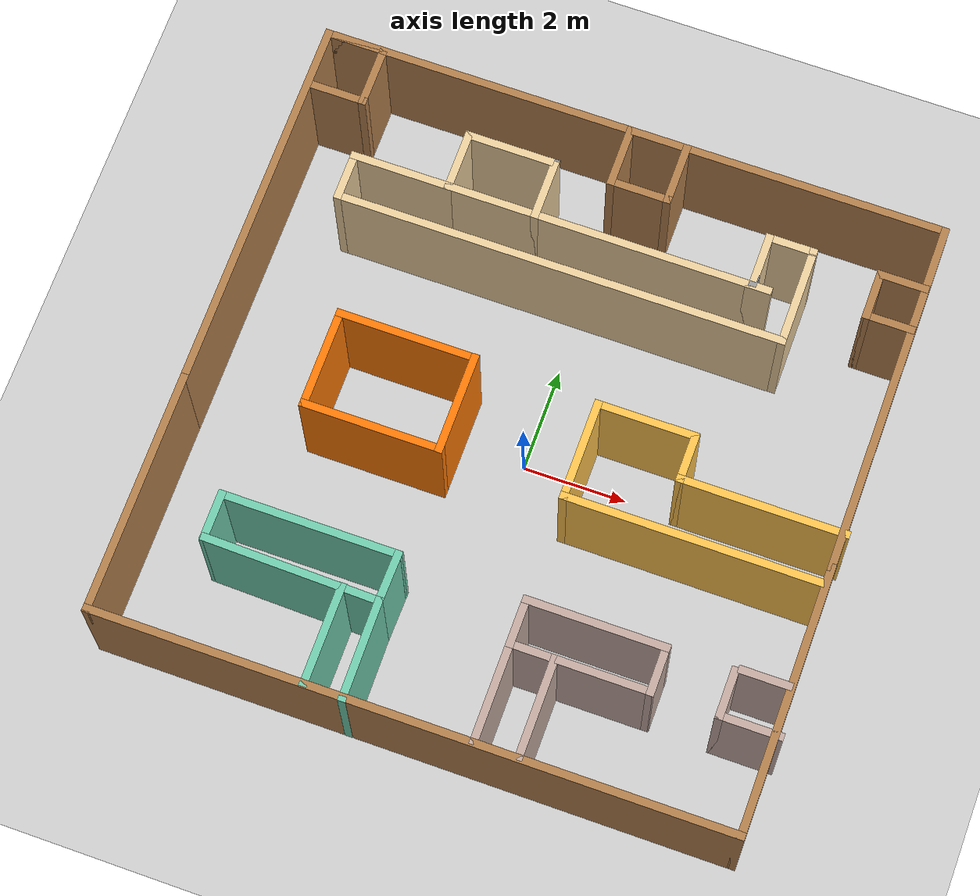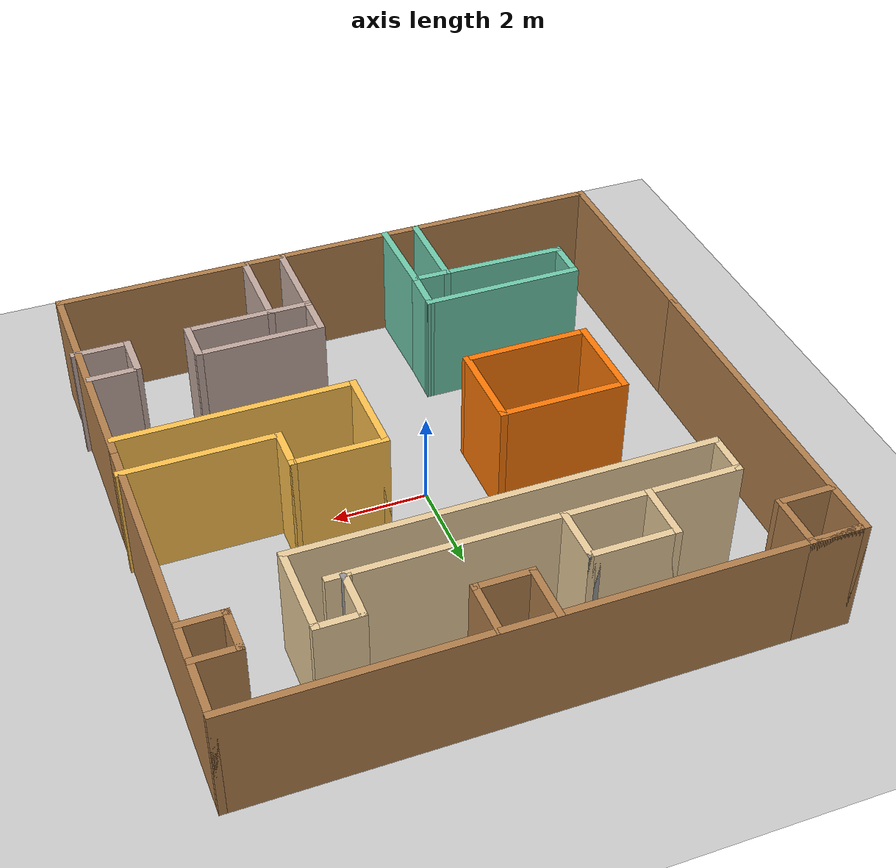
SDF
<sdf version="1.7">
 <world name="default">
  <light name="sun" type="directional">
   <pose>0 0 10 0 -0 0</pose>
   <diffuse>0.8 0.8 0.8 1</diffuse>
   <specular>0.2 0.2 0.2 1</specular>
   <attenuation>
    <range>1000</range>
    <constant>0.9</constant>
    <linear>0.01</linear>
    <quadratic>0.001</quadratic>
   </attenuation>
   <direction>-0.5 0.1 -0.9</direction>
   <spot><inner_angle>0</inner_angle><outer_angle>0</outer_angle><falloff>0</falloff></spot>
  </light>
  <model name="ground_plane">
   <static>1</static>
   <link name="link">
    <collision name="collision">
     <geometry><plane><normal>0 0 1</normal><size>100 100</size></plane></geometry>
     <surface><friction><ode><mu>100</mu><mu2>50</mu2></ode></friction></surface>
    </collision>
    <visual name="visual">
     <cast_shadows>0</cast_shadows>
     <geometry><plane><normal>0 0 1</normal><size>100 100</size></plane></geometry>
     <material>
      <script><uri>file://media/materials/scripts/gazebo.material</uri><name>Gazebo/Grey</name></script>
     </material>
    </visual>
   </link>
  </model>
  <gravity>0 0 -9.8</gravity>
  <magnetic_field>6e-06 2.3e-05 -4.2e-05</magnetic_field>
  <atmosphere type="adiabatic"/>
  <physics type="ode">
   <max_step_size>0.001</max_step_size>
   <real_time_factor>1</real_time_factor>
   <real_time_update_rate>1000</real_time_update_rate>
  </physics>
  <scene><ambient>0.4 0.4 0.4 1</ambient><background>0.7 0.7 0.7 1</background><shadows>1</shadows></scene>
  <audio><device>default</device></audio>
  <spherical_coordinates>
   <surface_model>EARTH_WGS84</surface_model>
   <latitude_deg>0</latitude_deg>
   <longitude_deg>0</longitude_deg>
   <elevation>0</elevation>
   <heading_deg>0</heading_deg>
  </spherical_coordinates>
  <model name="Untitled">
   <pose>0.021221 0.133235 0 0 -0 0</pose>
   <link name="Wall_10">
    <collision name="Wall_10_Collision">
     <geometry><box><size>5.25 0.15 2.5</size></box></geometry>
     <pose>0 0 1.25 0 -0 0</pose>
    </collision>
    <visual name="Wall_10_Visual">
     <pose>0 0 1.25 0 -0 0</pose>
     <geometry><box><size>5.25 0.15 2.5</size></box></geometry>
     <material>
      <script><uri>file://media/materials/scripts/gazebo.material</uri><name>Gazebo/Wood</name></script>
      <ambient>1 1 1 1</ambient>
     </material>
     <meta><layer>0</layer></meta>
    </visual>
    <pose>6.00878 -3.42323 0 0 -0 1.5708</pose>
   </link>
   <link name="Wall_106">
    <collision name="Wall_106_Collision">
     <geometry><box><size>1.06668 0.15 2.5</size></box></geometry>
     <pose>0 0 1.25 0 -0 0</pose>
    </collision>
    <visual name="Wall_106_Visual">
     <pose>0 0 1.25 0 -0 0</pose>
     <geometry><box><size>1.06668 0.15 2.5</size></box></geometry>
     <material>
      <script><uri>file://media/materials/scripts/gazebo.material</uri><name>Gazebo/Grey</name></script>
      <ambient>0.435294 0.796078 0.67451 1</ambient>
     </material>
     <meta><layer>0</layer></meta>
    </visual>
    <pose>-1.29421 -3.66768 0 0 -0 1.54898</pose>
   </link>
   <link name="Wall_112">
    <collision name="Wall_112_Collision">
     <geometry><box><size>3.5 0.15 2.5</size></box></geometry>
     <pose>0 0 1.25 0 -0 0</pose>
    </collision>
    <visual name="Wall_112_Visual">
     <pose>0 0 1.25 0 -0 0</pose>
     <geometry><box><size>3.5 0.15 2.5</size></box></geometry>
     <material>
      <script><uri>file://media/materials/scripts/gazebo.material</uri><name>Gazebo/Grey</name></script>
      <ambient>0.435294 0.796078 0.67451 1</ambient>
     </material>
     <meta><layer>0</layer></meta>
    </visual>
    <pose>-2.95921 -3.20934 0 0 -0 3.14159</pose>
   </link>
   <link name="Wall_113">
    <collision name="Wall_113_Collision">
     <geometry><box><size>1 0.15 2.5</size></box></geometry>
     <pose>0 0 1.25 0 -0 0</pose>
    </collision>
    <visual name="Wall_113_Visual">
     <pose>0 0 1.25 0 -0 0</pose>
     <geometry><box><size>1 0.15 2.5</size></box></geometry>
     <material>
      <script><uri>file://media/materials/scripts/gazebo.material</uri><name>Gazebo/Grey</name></script>
      <ambient>0.435294 0.796078 0.67451 1</ambient>
     </material>
     <meta><layer>0</layer></meta>
    </visual>
    <pose>-4.63421 -3.63434 0 0 -0 -1.5708</pose>
   </link>
   <link name="Wall_115">
    <collision name="Wall_115_Collision">
     <geometry><box><size>3.48067 0.15 2.5</size></box></geometry>
     <pose>0 0 1.25 0 -0 0</pose>
    </collision>
    <visual name="Wall_115_Visual">
     <pose>0 0 1.25 0 -0 0</pose>
     <geometry><box><size>3.48067 0.15 2.5</size></box></geometry>
     <material>
      <script><uri>file://media/materials/scripts/gazebo.material</uri><name>Gazebo/Grey</name></script>
      <ambient>0.435294 0.796078 0.67451 1</ambient>
     </material>
     <meta><layer>0</layer></meta>
    </visual>
    <pose>-2.96921 -4.09267 0 0 -0 -0.02002</pose>
   </link>
   <link name="Wall_13">
    <collision name="Wall_13_Collision">
     <geometry><box><size>7 0.15 2.5</size></box></geometry>
     <pose>0 0 1.25 0 -0 0</pose>
    </collision>
    <visual name="Wall_13_Visual">
     <pose>0 0 1.25 0 -0 0</pose>
     <geometry><box><size>7 0.15 2.5</size></box></geometry>
     <material>
      <script><uri>file://media/materials/scripts/gazebo.material</uri><name>Gazebo/Wood</name></script>
      <ambient>1 1 1 1</ambient>
     </material>
     <meta><layer>0</layer></meta>
    </visual>
    <pose>6.00878 2.55177 0 0 -0 1.5708</pose>
   </link>
   <link name="Wall_131">
    <collision name="Wall_131_Collision">
     <geometry><box><size>5 0.15 2.5</size></box></geometry>
     <pose>0 0 1.25 0 -0 0</pose>
    </collision>
    <visual name="Wall_131_Visual">
     <pose>0 0 1.25 0 -0 0</pose>
     <geometry><box><size>5 0.15 2.5</size></box></geometry>
     <material>
      <script><uri>file://media/materials/scripts/gazebo.material</uri><name>Gazebo/Grey</name></script>
      <ambient>1 0.764706 0.305882 1</ambient>
     </material>
     <meta><layer>0</layer></meta>
    </visual>
    <pose>3.53669 -1.19876 0 0 -0 3.14159</pose>
   </link>
   <link name="Wall_132">
    <collision name="Wall_132_Collision">
     <geometry><box><size>2 0.15 2.5</size></box></geometry>
     <pose>0 0 1.25 0 -0 0</pose>
    </collision>
    <visual name="Wall_132_Visual">
     <pose>0 0 1.25 0 -0 0</pose>
     <geometry><box><size>2 0.15 2.5</size></box></geometry>
     <material>
      <script><uri>file://media/materials/scripts/gazebo.material</uri><name>Gazebo/Grey</name></script>
      <ambient>1 0.764706 0.305882 1</ambient>
     </material>
     <meta><layer>0</layer></meta>
    </visual>
    <pose>1.11169 -0.273755 0 0 -0 1.5708</pose>
   </link>
   <link name="Wall_133">
    <collision name="Wall_133_Collision">
     <geometry><box><size>2 0.15 2.5</size></box></geometry>
     <pose>0 0 1.25 0 -0 0</pose>
    </collision>
    <visual name="Wall_133_Visual">
     <pose>0 0 1.25 0 -0 0</pose>
     <geometry><box><size>2 0.15 2.5</size></box></geometry>
     <material>
      <script><uri>file://media/materials/scripts/gazebo.material</uri><name>Gazebo/Grey</name></script>
      <ambient>1 0.764706 0.305882 1</ambient>
     </material>
     <meta><layer>0</layer></meta>
    </visual>
    <pose>2.03669 0.651245 0 0 -0 0</pose>
   </link>
   <link name="Wall_134">
    <collision name="Wall_134_Collision">
     <geometry><box><size>1 0.15 2.5</size></box></geometry>
     <pose>0 0 1.25 0 -0 0</pose>
    </collision>
    <visual name="Wall_134_Visual">
     <pose>0 0 1.25 0 -0 0</pose>
     <geometry><box><size>1 0.15 2.5</size></box></geometry>
     <material>
      <script><uri>file://media/materials/scripts/gazebo.material</uri><name>Gazebo/Grey</name></script>
      <ambient>1 0.764706 0.305882 1</ambient>
     </material>
     <meta><layer>0</layer></meta>
    </visual>
    <pose>2.96169 0.226245 0 0 -0 -1.5708</pose>
   </link>
   <link name="Wall_135">
    <collision name="Wall_135_Collision">
     <geometry><box><size>3.25 0.15 2.5</size></box></geometry>
     <pose>0 0 1.25 0 -0 0</pose>
    </collision>
    <visual name="Wall_135_Visual">
     <pose>0 0 1.25 0 -0 0</pose>
     <geometry><box><size>3.25 0.15 2.5</size></box></geometry>
     <material>
      <script><uri>file://media/materials/scripts/gazebo.material</uri><name>Gazebo/Grey</name></script>
      <ambient>1 0.764706 0.305882 1</ambient>
     </material>
     <meta><layer>0</layer></meta>
    </visual>
    <pose>4.51169 -0.198755 0 0 -0 0</pose>
   </link>
   <link name="Wall_140">
    <collision name="Wall_140_Collision">
     <geometry><box><size>2.75 0.15 2.5</size></box></geometry>
     <pose>0 0 1.25 0 -0 0</pose>
    </collision>
    <visual name="Wall_140_Visual">
     <pose>0 0 1.25 0 -0 0</pose>
     <geometry><box><size>2.75 0.15 2.5</size></box></geometry>
     <material>
      <script><uri>file://media/materials/scripts/gazebo.material</uri><name>Gazebo/Grey</name></script>
      <ambient>0.996078 0.47451 0.0196078 1</ambient>
     </material>
     <meta><layer>0</layer></meta>
    </visual>
    <pose>-2.5792 0.743834 0 0 -0 3.14159</pose>
   </link>
   <link name="Wall_141">
    <collision name="Wall_141_Collision">
     <geometry><box><size>2 0.15 2.5</size></box></geometry>
     <pose>0 0 1.25 0 -0 0</pose>
    </collision>
    <visual name="Wall_141_Visual">
     <pose>0 0 1.25 0 -0 0</pose>
     <geometry><box><size>2 0.15 2.5</size></box></geometry>
     <material>
      <script><uri>file://media/materials/scripts/gazebo.material</uri><name>Gazebo/Grey</name></script>
      <ambient>0.996078 0.47451 0.0196078 1</ambient>
     </material>
     <meta><layer>0</layer></meta>
    </visual>
    <pose>-3.8792 -0.181166 0 0 -0 -1.5708</pose>
   </link>
   <link name="Wall_142">
    <collision name="Wall_142_Collision">
     <geometry><box><size>2.75 0.15 2.5</size></box></geometry>
     <pose>0 0 1.25 0 -0 0</pose>
    </collision>
    <visual name="Wall_142_Visual">
     <pose>0 0 1.25 0 -0 0</pose>
     <geometry><box><size>2.75 0.15 2.5</size></box></geometry>
     <material>
      <script><uri>file://media/materials/scripts/gazebo.material</uri><name>Gazebo/Grey</name></script>
      <ambient>0.996078 0.47451 0.0196078 1</ambient>
     </material>
     <meta><layer>0</layer></meta>
    </visual>
    <pose>-2.5792 -1.10617 0 0 -0 0</pose>
   </link>
   <link name="Wall_144">
    <collision name="Wall_144_Collision">
     <geometry><box><size>2 0.15 2.5</size></box></geometry>
     <pose>0 0 1.25 0 -0 0</pose>
    </collision>
    <visual name="Wall_144_Visual">
     <pose>0 0 1.25 0 -0 0</pose>
     <geometry><box><size>2 0.15 2.5</size></box></geometry>
     <material>
      <script><uri>file://media/materials/scripts/gazebo.material</uri><name>Gazebo/Grey</name></script>
      <ambient>0.996078 0.47451 0.0196078 1</ambient>
     </material>
     <meta><layer>0</layer></meta>
    </visual>
    <pose>-1.2792 -0.181166 0 0 -0 -1.5708</pose>
   </link>
   <link name="Wall_146">
    <collision name="Wall_146_Collision">
     <geometry><box><size>2 0.15 2.5</size></box></geometry>
     <pose>0 0 1.25 0 -0 0</pose>
    </collision>
    <visual name="Wall_146_Visual">
     <pose>0 0 1.25 0 -0 0</pose>
     <geometry><box><size>2 0.15 2.5</size></box></geometry>
     <material>
      <script><uri>file://media/materials/scripts/gazebo.material</uri><name>Gazebo/Grey</name></script>
      <ambient>0.435294 0.796078 0.67451 1</ambient>
     </material>
     <meta><layer>0</layer></meta>
    </visual>
    <pose>-2.01378 -5.0271 0 0 -0 -1.5708</pose>
   </link>
   <link name="Wall_148">
    <collision name="Wall_148_Collision">
     <geometry><box><size>2 0.15 2.5</size></box></geometry>
     <pose>0 0 1.25 0 -0 0</pose>
    </collision>
    <visual name="Wall_148_Visual">
     <pose>0 0 1.25 0 -0 0</pose>
     <geometry><box><size>2 0.15 2.5</size></box></geometry>
     <material>
      <script><uri>file://media/materials/scripts/gazebo.material</uri><name>Gazebo/Grey</name></script>
      <ambient>0.760784 0.662745 0.627451 1</ambient>
     </material>
     <meta><layer>0</layer></meta>
    </visual>
    <pose>1.95646 -5.00962 0 0 -0 -1.5708</pose>
   </link>
   <link name="Wall_15">
    <collision name="Wall_15_Collision">
     <geometry><box><size>7.5 0.15 2.5</size></box></geometry>
     <pose>0 0 1.25 0 -0 0</pose>
    </collision>
    <visual name="Wall_15_Visual">
     <pose>0 0 1.25 0 -0 0</pose>
     <geometry><box><size>7.5 0.15 2.5</size></box></geometry>
     <material>
      <script><uri>file://media/materials/scripts/gazebo.material</uri><name>Gazebo/Wood</name></script>
      <ambient>1 1 1 1</ambient>
     </material>
     <meta><layer>0</layer></meta>
    </visual>
    <pose>-6.09122 2.30177 0 0 -0 1.5708</pose>
   </link>
   <link name="Wall_17">
    <collision name="Wall_17_Collision">
     <geometry><box><size>12.25 0.15 2.5</size></box></geometry>
     <pose>0 0 1.25 0 -0 0</pose>
    </collision>
    <visual name="Wall_17_Visual">
     <pose>0 0 1.25 0 -0 0</pose>
     <geometry><box><size>12.25 0.15 2.5</size></box></geometry>
     <material>
      <script><uri>file://media/materials/scripts/gazebo.material</uri><name>Gazebo/Wood</name></script>
      <ambient>1 1 1 1</ambient>
     </material>
     <meta><layer>0</layer></meta>
    </visual>
    <pose>-0.041221 5.97677 0 0 -0 0</pose>
   </link>
   <link name="Wall_19">
    <collision name="Wall_19_Collision">
     <geometry><box><size>1.25 0.15 2.5</size></box></geometry>
     <pose>0 0 1.25 0 -0 0</pose>
    </collision>
    <visual name="Wall_19_Visual">
     <pose>0 0 1.25 0 -0 0</pose>
     <geometry><box><size>1.25 0.15 2.5</size></box></geometry>
     <material>
      <script><uri>file://media/materials/scripts/gazebo.material</uri><name>Gazebo/Wood</name></script>
      <ambient>1 1 1 1</ambient>
     </material>
     <meta><layer>0</layer></meta>
    </visual>
    <pose>-5.54122 5.97677 0 0 -0 0</pose>
   </link>
   <link name="Wall_20">
    <collision name="Wall_20_Collision">
     <geometry><box><size>1.25 0.15 2.5</size></box></geometry>
     <pose>0 0 1.25 0 -0 0</pose>
    </collision>
    <visual name="Wall_20_Visual">
     <pose>0 0 1.25 0 -0 0</pose>
     <geometry><box><size>1.25 0.15 2.5</size></box></geometry>
     <material>
      <script><uri>file://media/materials/scripts/gazebo.material</uri><name>Gazebo/Wood</name></script>
      <ambient>1 1 1 1</ambient>
     </material>
     <meta><layer>0</layer></meta>
    </visual>
    <pose>-4.99122 5.42676 0 0 -0 -1.5708</pose>
   </link>
   <link name="Wall_21">
    <collision name="Wall_21_Collision">
     <geometry><box><size>1.25 0.15 2.5</size></box></geometry>
     <pose>0 0 1.25 0 -0 0</pose>
    </collision>
    <visual name="Wall_21_Visual">
     <pose>0 0 1.25 0 -0 0</pose>
     <geometry><box><size>1.25 0.15 2.5</size></box></geometry>
     <material>
      <script><uri>file://media/materials/scripts/gazebo.material</uri><name>Gazebo/Wood</name></script>
      <ambient>1 1 1 1</ambient>
     </material>
     <meta><layer>0</layer></meta>
    </visual>
    <pose>-5.54122 4.87677 0 0 -0 3.14159</pose>
   </link>
   <link name="Wall_29">
    <collision name="Wall_29_Collision">
     <geometry><box><size>1.25 0.15 2.5</size></box></geometry>
     <pose>0 0 1.25 0 -0 0</pose>
    </collision>
    <visual name="Wall_29_Visual">
     <pose>0 0 1.25 0 -0 0</pose>
     <geometry><box><size>1.25 0.15 2.5</size></box></geometry>
     <material>
      <script><uri>file://media/materials/scripts/gazebo.material</uri><name>Gazebo/Grey</name></script>
      <ambient>0.921569 0.807843 0.615686 1</ambient>
     </material>
     <meta><layer>0</layer></meta>
    </visual>
    <pose>-2.89122 4.32677 0 0 -0 -1.5708</pose>
   </link>
   <link name="Wall_30">
    <collision name="Wall_30_Collision">
     <geometry><box><size>2 0.15 2.5</size></box></geometry>
     <pose>0 0 1.25 0 -0 0</pose>
    </collision>
    <visual name="Wall_30_Visual">
     <pose>0 0 1.25 0 -0 0</pose>
     <geometry><box><size>2 0.15 2.5</size></box></geometry>
     <material>
      <script><uri>file://media/materials/scripts/gazebo.material</uri><name>Gazebo/Grey</name></script>
      <ambient>0.921569 0.807843 0.615686 1</ambient>
     </material>
     <meta><layer>0</layer></meta>
    </visual>
    <pose>-3.81622 3.77677 0 0 -0 3.14159</pose>
   </link>
   <link name="Wall_34">
    <collision name="Wall_34_Collision">
     <geometry><box><size>1 0.15 2.5</size></box></geometry>
     <pose>0 0 1.25 0 -0 0</pose>
    </collision>
    <visual name="Wall_34_Visual">
     <pose>0 0 1.25 0 -0 0</pose>
     <geometry><box><size>1 0.15 2.5</size></box></geometry>
     <material>
      <script><uri>file://media/materials/scripts/gazebo.material</uri><name>Gazebo/Grey</name></script>
      <ambient>0.921569 0.807843 0.615686 1</ambient>
     </material>
     <meta><layer>0</layer></meta>
    </visual>
    <pose>-4.74122 3.35176 0 0 -0 -1.5708</pose>
   </link>
   <link name="Wall_35">
    <collision name="Wall_35_Collision">
     <geometry><box><size>8.75 0.15 2.5</size></box></geometry>
     <pose>0 0 1.25 0 -0 0</pose>
    </collision>
    <visual name="Wall_35_Visual">
     <pose>0 0 1.25 0 -0 0</pose>
     <geometry><box><size>8.75 0.15 2.5</size></box></geometry>
     <material>
      <script><uri>file://media/materials/scripts/gazebo.material</uri><name>Gazebo/Grey</name></script>
      <ambient>0.921569 0.807843 0.615686 1</ambient>
     </material>
     <meta><layer>0</layer></meta>
    </visual>
    <pose>-0.441221 2.92677 0 0 -0 0</pose>
   </link>
   <link name="Wall_38">
    <collision name="Wall_38_Collision">
     <geometry><box><size>2 0.15 2.5</size></box></geometry>
     <pose>0 0 1.25 0 -0 0</pose>
    </collision>
    <visual name="Wall_38_Visual">
     <pose>0 0 1.25 0 -0 0</pose>
     <geometry><box><size>2 0.15 2.5</size></box></geometry>
     <material>
      <script><uri>file://media/materials/scripts/gazebo.material</uri><name>Gazebo/Grey</name></script>
      <ambient>0.921569 0.807843 0.615686 1</ambient>
     </material>
     <meta><layer>0</layer></meta>
    </visual>
    <pose>3.85878 3.85176 0 0 -0 1.5708</pose>
   </link>
   <link name="Wall_39">
    <collision name="Wall_39_Collision">
     <geometry><box><size>1 0.15 2.5</size></box></geometry>
     <pose>0 0 1.25 0 -0 0</pose>
    </collision>
    <visual name="Wall_39_Visual">
     <pose>0 0 1.25 0 -0 0</pose>
     <geometry><box><size>1 0.15 2.5</size></box></geometry>
     <material>
      <script><uri>file://media/materials/scripts/gazebo.material</uri><name>Gazebo/Grey</name></script>
      <ambient>0.921569 0.807843 0.615686 1</ambient>
     </material>
     <meta><layer>0</layer></meta>
    </visual>
    <pose>3.43378 4.77677 0 0 -0 3.14159</pose>
   </link>
   <link name="Wall_40">
    <collision name="Wall_40_Collision">
     <geometry><box><size>1 0.15 2.5</size></box></geometry>
     <pose>0 0 1.25 0 -0 0</pose>
    </collision>
    <visual name="Wall_40_Visual">
     <pose>0 0 1.25 0 -0 0</pose>
     <geometry><box><size>1 0.15 2.5</size></box></geometry>
     <material>
      <script><uri>file://media/materials/scripts/gazebo.material</uri><name>Gazebo/Grey</name></script>
      <ambient>0.921569 0.807843 0.615686 1</ambient>
     </material>
     <meta><layer>0</layer></meta>
    </visual>
    <pose>3.00878 4.35177 0 0 -0 -1.5708</pose>
   </link>
   <link name="Wall_41">
    <collision name="Wall_41_Collision">
     <geometry><box><size>0.25 0.15 2.5</size></box></geometry>
     <pose>0 0 1.25 0 -0 0</pose>
    </collision>
    <visual name="Wall_41_Visual">
     <pose>0 0 1.25 0 -0 0</pose>
     <geometry><box><size>0.25 0.15 2.5</size></box></geometry>
     <material>
      <script><uri>file://media/materials/scripts/gazebo.material</uri><name>Gazebo/Grey</name></script>
      <ambient>1 1 1 1</ambient>
     </material>
     <meta><layer>0</layer></meta>
    </visual>
    <pose>3.00878 3.87677 0 0 -0 -1.5708</pose>
   </link>
   <link name="Wall_43">
    <collision name="Wall_43_Collision">
     <geometry><box><size>6 0.15 2.5</size></box></geometry>
     <pose>0 0 1.25 0 -0 0</pose>
    </collision>
    <visual name="Wall_43_Visual">
     <pose>0 0 1.25 0 -0 0</pose>
     <geometry><box><size>6 0.15 2.5</size></box></geometry>
     <material>
      <script><uri>file://media/materials/scripts/gazebo.material</uri><name>Gazebo/Grey</name></script>
      <ambient>0.921569 0.807843 0.615686 1</ambient>
     </material>
     <meta><layer>0</layer></meta>
    </visual>
    <pose>0.033779 3.77677 0 0 -0 0</pose>
   </link>
   <link name="Wall_44">
    <collision name="Wall_44_Collision">
     <geometry><box><size>0.5 0.15 2.5</size></box></geometry>
     <pose>0 0 1.25 0 -0 0</pose>
    </collision>
    <visual name="Wall_44_Visual">
     <pose>0 0 1.25 0 -0 0</pose>
     <geometry><box><size>0.5 0.15 2.5</size></box></geometry>
     <material>
      <script><uri>file://media/materials/scripts/gazebo.material</uri><name>Gazebo/Grey</name></script>
      <ambient>0.921569 0.807843 0.615686 1</ambient>
     </material>
     <meta><layer>0</layer></meta>
    </visual>
    <pose>3.13378 3.77677 0 0 -0 0</pose>
   </link>
   <link name="Wall_46">
    <collision name="Wall_46_Collision">
     <geometry><box><size>1.75 0.15 2.5</size></box></geometry>
     <pose>0 0 1.25 0 -0 0</pose>
    </collision>
    <visual name="Wall_46_Visual">
     <pose>0 0 1.25 0 -0 0</pose>
     <geometry><box><size>1.75 0.15 2.5</size></box></geometry>
     <material>
      <script><uri>file://media/materials/scripts/gazebo.material</uri><name>Gazebo/Grey</name></script>
      <ambient>0.921569 0.807843 0.615686 1</ambient>
     </material>
     <meta><layer>0</layer></meta>
    </visual>
    <pose>-2.09122 4.87677 0 0 -0 0</pose>
   </link>
   <link name="Wall_47">
    <collision name="Wall_47_Collision">
     <geometry><box><size>0.25 0.15 2.5</size></box></geometry>
     <pose>0 0 1.25 0 -0 0</pose>
    </collision>
    <visual name="Wall_47_Visual">
     <pose>0 0 1.25 0 -0 0</pose>
     <geometry><box><size>0.25 0.15 2.5</size></box></geometry>
     <material>
      <script><uri>file://media/materials/scripts/gazebo.material</uri><name>Gazebo/Grey</name></script>
      <ambient>1 1 1 1</ambient>
     </material>
     <meta><layer>0</layer></meta>
    </visual>
    <pose>-1.24122 4.87677 0 0 -0 0</pose>
   </link>
   <link name="Wall_48">
    <collision name="Wall_48_Collision">
     <geometry><box><size>1.25 0.15 2.5</size></box></geometry>
     <pose>0 0 1.25 0 -0 0</pose>
    </collision>
    <visual name="Wall_48_Visual">
     <pose>0 0 1.25 0 -0 0</pose>
     <geometry><box><size>1.25 0.15 2.5</size></box></geometry>
     <material>
      <script><uri>file://media/materials/scripts/gazebo.material</uri><name>Gazebo/Grey</name></script>
      <ambient>0.921569 0.807843 0.615686 1</ambient>
     </material>
     <meta><layer>0</layer></meta>
    </visual>
    <pose>-1.19122 4.32677 0 0 -0 -1.5708</pose>
   </link>
   <link name="Wall_51">
    <collision name="Wall_51_Collision">
     <geometry><box><size>1.25 0.15 2.5</size></box></geometry>
     <pose>0 0 1.25 0 -0 0</pose>
    </collision>
    <visual name="Wall_51_Visual">
     <pose>0 0 1.25 0 -0 0</pose>
     <geometry><box><size>1.25 0.15 2.5</size></box></geometry>
     <material>
      <script><uri>file://media/materials/scripts/gazebo.material</uri><name>Gazebo/Wood</name></script>
      <ambient>1 1 1 1</ambient>
     </material>
     <meta><layer>0</layer></meta>
    </visual>
    <pose>-0.091221 5.42676 0 0 -0 1.5708</pose>
   </link>
   <link name="Wall_53">
    <collision name="Wall_53_Collision">
     <geometry><box><size>1.25 0.15 2.5</size></box></geometry>
     <pose>0 0 1.25 0 -0 0</pose>
    </collision>
    <visual name="Wall_53_Visual">
     <pose>0 0 1.25 0 -0 0</pose>
     <geometry><box><size>1.25 0.15 2.5</size></box></geometry>
     <material>
      <script><uri>file://media/materials/scripts/gazebo.material</uri><name>Gazebo/Wood</name></script>
      <ambient>1 1 1 1</ambient>
     </material>
     <meta><layer>0</layer></meta>
    </visual>
    <pose>0.458779 4.87677 0 0 -0 0</pose>
   </link>
   <link name="Wall_54">
    <collision name="Wall_54_Collision">
     <geometry><box><size>1.25 0.15 2.5</size></box></geometry>
     <pose>0 0 1.25 0 -0 0</pose>
    </collision>
    <visual name="Wall_54_Visual">
     <pose>0 0 1.25 0 -0 0</pose>
     <geometry><box><size>1.25 0.15 2.5</size></box></geometry>
     <material>
      <script><uri>file://media/materials/scripts/gazebo.material</uri><name>Gazebo/Wood</name></script>
      <ambient>1 1 1 1</ambient>
     </material>
     <meta><layer>0</layer></meta>
    </visual>
    <pose>1.00878 5.42676 0 0 -0 1.5708</pose>
   </link>
   <link name="Wall_57">
    <collision name="Wall_57_Collision">
     <geometry><box><size>1 0.15 2.5</size></box></geometry>
     <pose>0 0 1.25 0 -0 0</pose>
    </collision>
    <visual name="Wall_57_Visual">
     <pose>0 0 1.25 0 -0 0</pose>
     <geometry><box><size>1 0.15 2.5</size></box></geometry>
     <material>
      <script><uri>file://media/materials/scripts/gazebo.material</uri><name>Gazebo/Wood</name></script>
      <ambient>1 1 1 1</ambient>
     </material>
     <meta><layer>0</layer></meta>
    </visual>
    <pose>5.5719 4.76463 0 0 -0 3.14159</pose>
   </link>
   <link name="Wall_58">
    <collision name="Wall_58_Collision">
     <geometry><box><size>1 0.15 2.5</size></box></geometry>
     <pose>0 0 1.25 0 -0 0</pose>
    </collision>
    <visual name="Wall_58_Visual">
     <pose>0 0 1.25 0 -0 0</pose>
     <geometry><box><size>1 0.15 2.5</size></box></geometry>
     <material>
      <script><uri>file://media/materials/scripts/gazebo.material</uri><name>Gazebo/Wood</name></script>
      <ambient>1 1 1 1</ambient>
     </material>
     <meta><layer>0</layer></meta>
    </visual>
    <pose>5.1469 4.33963 0 0 -0 -1.5708</pose>
   </link>
   <link name="Wall_59">
    <collision name="Wall_59_Collision">
     <geometry><box><size>1 0.15 2.5</size></box></geometry>
     <pose>0 0 1.25 0 -0 0</pose>
    </collision>
    <visual name="Wall_59_Visual">
     <pose>0 0 1.25 0 -0 0</pose>
     <geometry><box><size>1 0.15 2.5</size></box></geometry>
     <material>
      <script><uri>file://media/materials/scripts/gazebo.material</uri><name>Gazebo/Wood</name></script>
      <ambient>1 1 1 1</ambient>
     </material>
     <meta><layer>0</layer></meta>
    </visual>
    <pose>5.5719 3.91463 0 0 -0 0</pose>
   </link>
   <link name="Wall_7">
    <collision name="Wall_7_Collision">
     <geometry><box><size>4.75 0.15 2.5</size></box></geometry>
     <pose>0 0 1.25 0 -0 0</pose>
    </collision>
    <visual name="Wall_7_Visual">
     <pose>0 0 1.25 0 -0 0</pose>
     <geometry><box><size>4.75 0.15 2.5</size></box></geometry>
     <material>
      <script><uri>file://media/materials/scripts/gazebo.material</uri><name>Gazebo/Wood</name></script>
      <ambient>1 1 1 1</ambient>
     </material>
     <meta><layer>0</layer></meta>
    </visual>
    <pose>-6.09122 -3.67323 0 0 -0 -1.5708</pose>
   </link>
   <link name="Wall_76">
    <collision name="Wall_76_Collision">
     <geometry><box><size>2 0.15 2.5</size></box></geometry>
     <pose>0 0 1.25 0 -0 0</pose>
    </collision>
    <visual name="Wall_76_Visual">
     <pose>0 0 1.25 0 -0 0</pose>
     <geometry><box><size>2 0.15 2.5</size></box></geometry>
     <material>
      <script><uri>file://media/materials/scripts/gazebo.material</uri><name>Gazebo/Grey</name></script>
      <ambient>0.435294 0.796078 0.67451 1</ambient>
     </material>
     <meta><layer>0</layer></meta>
    </visual>
    <pose>-1.29421 -5.05101 0 0 -0 1.58161</pose>
   </link>
   <link name="Wall_8">
    <collision name="Wall_8_Collision">
     <geometry><box><size>12.25 0.15 2.5</size></box></geometry>
     <pose>0 0 1.25 0 -0 0</pose>
    </collision>
    <visual name="Wall_8_Visual">
     <pose>0 0 1.25 0 -0 0</pose>
     <geometry><box><size>12.25 0.15 2.5</size></box></geometry>
     <material>
      <script><uri>file://media/materials/scripts/gazebo.material</uri><name>Gazebo/Wood</name></script>
      <ambient>1 1 1 1</ambient>
     </material>
     <meta><layer>0</layer></meta>
    </visual>
    <pose>-0.041221 -5.97323 0 0 -0 0</pose>
   </link>
   <link name="Wall_81">
    <collision name="Wall_81_Collision">
     <geometry><box><size>2 0.15 2.5</size></box></geometry>
     <pose>0 0 1.25 0 -0 0</pose>
    </collision>
    <visual name="Wall_81_Visual">
     <pose>0 0 1.25 0 -0 0</pose>
     <geometry><box><size>2 0.15 2.5</size></box></geometry>
     <material>
      <script><uri>file://media/materials/scripts/gazebo.material</uri><name>Gazebo/Grey</name></script>
      <ambient>0.760784 0.662745 0.627451 1</ambient>
     </material>
     <meta><layer>0</layer></meta>
    </visual>
    <pose>1.12942 -5.01079 0 0 -0 1.5708</pose>
   </link>
   <link name="Wall_82">
    <collision name="Wall_82_Collision">
     <geometry><box><size>2.75 0.15 2.5</size></box></geometry>
     <pose>0 0 1.25 0 -0 0</pose>
    </collision>
    <visual name="Wall_82_Visual">
     <pose>0 0 1.25 0 -0 0</pose>
     <geometry><box><size>2.75 0.15 2.5</size></box></geometry>
     <material>
      <script><uri>file://media/materials/scripts/gazebo.material</uri><name>Gazebo/Grey</name></script>
      <ambient>0.760784 0.662745 0.627451 1</ambient>
     </material>
     <meta><layer>0</layer></meta>
    </visual>
    <pose>2.42942 -4.08579 0 0 -0 0</pose>
   </link>
   <link name="Wall_85">
    <collision name="Wall_85_Collision">
     <geometry><box><size>1.25 0.15 2.5</size></box></geometry>
     <pose>0 0 1.25 0 -0 0</pose>
    </collision>
    <visual name="Wall_85_Visual">
     <pose>0 0 1.25 0 -0 0</pose>
     <geometry><box><size>1.25 0.15 2.5</size></box></geometry>
     <material>
      <script><uri>file://media/materials/scripts/gazebo.material</uri><name>Gazebo/Grey</name></script>
      <ambient>0.760784 0.662745 0.627451 1</ambient>
     </material>
     <meta><layer>0</layer></meta>
    </visual>
    <pose>5.54122 -4.08534 0 0 -0 0</pose>
   </link>
   <link name="Wall_87">
    <collision name="Wall_87_Collision">
     <geometry><box><size>1 0.15 2.5</size></box></geometry>
     <pose>0 0 1.25 0 -0 0</pose>
    </collision>
    <visual name="Wall_87_Visual">
     <pose>0 0 1.25 0 -0 0</pose>
     <geometry><box><size>1 0.15 2.5</size></box></geometry>
     <material>
      <script><uri>file://media/materials/scripts/gazebo.material</uri><name>Gazebo/Grey</name></script>
      <ambient>0.760784 0.662745 0.627451 1</ambient>
     </material>
     <meta><layer>0</layer></meta>
    </visual>
    <pose>5.53167 -3.18023 0 0 -0 3.14159</pose>
   </link>
   <link name="Wall_89">
    <collision name="Wall_89_Collision">
     <geometry><box><size>1 0.15 2.5</size></box></geometry>
     <pose>0 0 1.25 0 -0 0</pose>
    </collision>
    <visual name="Wall_89_Visual">
     <pose>0 0 1.25 0 -0 0</pose>
     <geometry><box><size>1 0.15 2.5</size></box></geometry>
     <material>
      <script><uri>file://media/materials/scripts/gazebo.material</uri><name>Gazebo/Grey</name></script>
      <ambient>0.760784 0.662745 0.627451 1</ambient>
     </material>
     <meta><layer>0</layer></meta>
    </visual>
    <pose>4.99122 -3.66034 0 0 -0 1.5708</pose>
   </link>
   <link name="Wall_91">
    <collision name="Wall_91_Collision">
     <geometry><box><size>1 0.15 2.5</size></box></geometry>
     <pose>0 0 1.25 0 -0 0</pose>
    </collision>
    <visual name="Wall_91_Visual">
     <pose>0 0 1.25 0 -0 0</pose>
     <geometry><box><size>1 0.15 2.5</size></box></geometry>
     <material>
      <script><uri>file://media/materials/scripts/gazebo.material</uri><name>Gazebo/Grey</name></script>
      <ambient>0.760784 0.662745 0.627451 1</ambient>
     </material>
     <meta><layer>0</layer></meta>
    </visual>
    <pose>3.72942 -3.66079 0 0 -0 1.5708</pose>
   </link>
   <link name="Wall_92">
    <collision name="Wall_92_Collision">
     <geometry><box><size>2.75 0.15 2.5</size></box></geometry>
     <pose>0 0 1.25 0 -0 0</pose>
    </collision>
    <visual name="Wall_92_Visual">
     <pose>0 0 1.25 0 -0 0</pose>
     <geometry><box><size>2.75 0.15 2.5</size></box></geometry>
     <material>
      <script><uri>file://media/materials/scripts/gazebo.material</uri><name>Gazebo/Grey</name></script>
      <ambient>0.760784 0.662745 0.627451 1</ambient>
     </material>
     <meta><layer>0</layer></meta>
    </visual>
    <pose>2.42942 -3.23579 0 0 -0 3.14159</pose>
   </link>
   <link name="Wall_93">
    <collision name="Wall_93_Collision">
     <geometry><box><size>1 0.15 2.5</size></box></geometry>
     <pose>0 0 1.25 0 -0 0</pose>
    </collision>
    <visual name="Wall_93_Visual">
     <pose>0 0 1.25 0 -0 0</pose>
     <geometry><box><size>1 0.15 2.5</size></box></geometry>
     <material>
      <script><uri>file://media/materials/scripts/gazebo.material</uri><name>Gazebo/Grey</name></script>
      <ambient>0.760784 0.662745 0.627451 1</ambient>
     </material>
     <meta><layer>0</layer></meta>
    </visual>
    <pose>1.12942 -3.66079 0 0 -0 -1.5708</pose>
   </link>
   <static>1</static>
  </model>
 </world>
</sdf>
